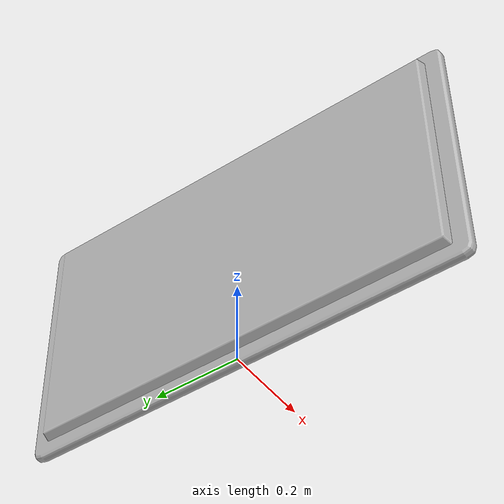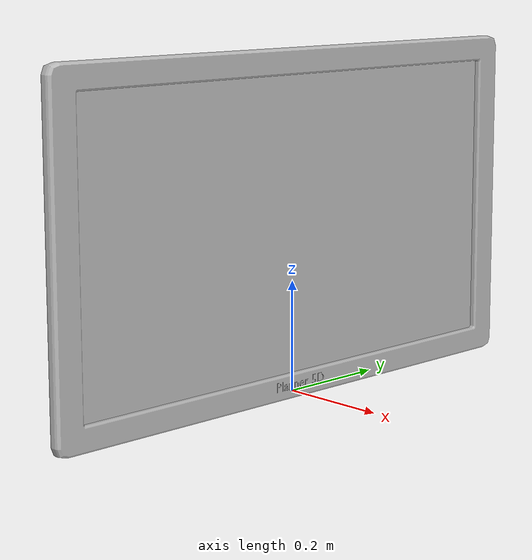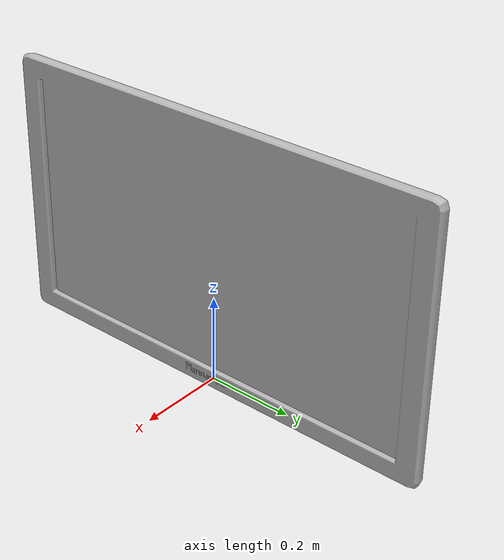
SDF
<?xml version='1.0'?>
<sdf version='1.4'>
  <model name='216'>
    <pose>0 0 0 0 0 0</pose>
    <static>true</static>
    <link name='link'>
      <collision name='collision'>
        <pose>0 0 0 0 0 0</pose>
        <geometry>
          <box>
            <size>0.05 1.05992 2</size>
          </box>
        </geometry>
      </collision>
      <visual name='visual'>
        <pose>0 0 0 0 0 0</pose>
        <geometry>
          <mesh><uri>model://216/216.dae</uri></mesh>
        </geometry>
      </visual>
    </link>
  </model>
</sdf>
